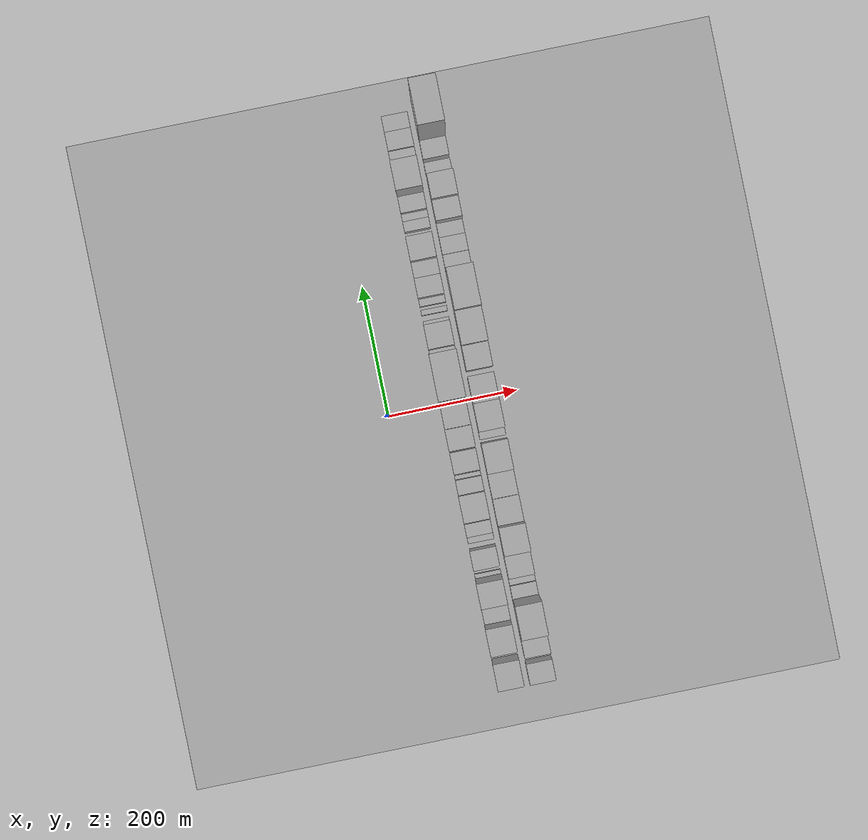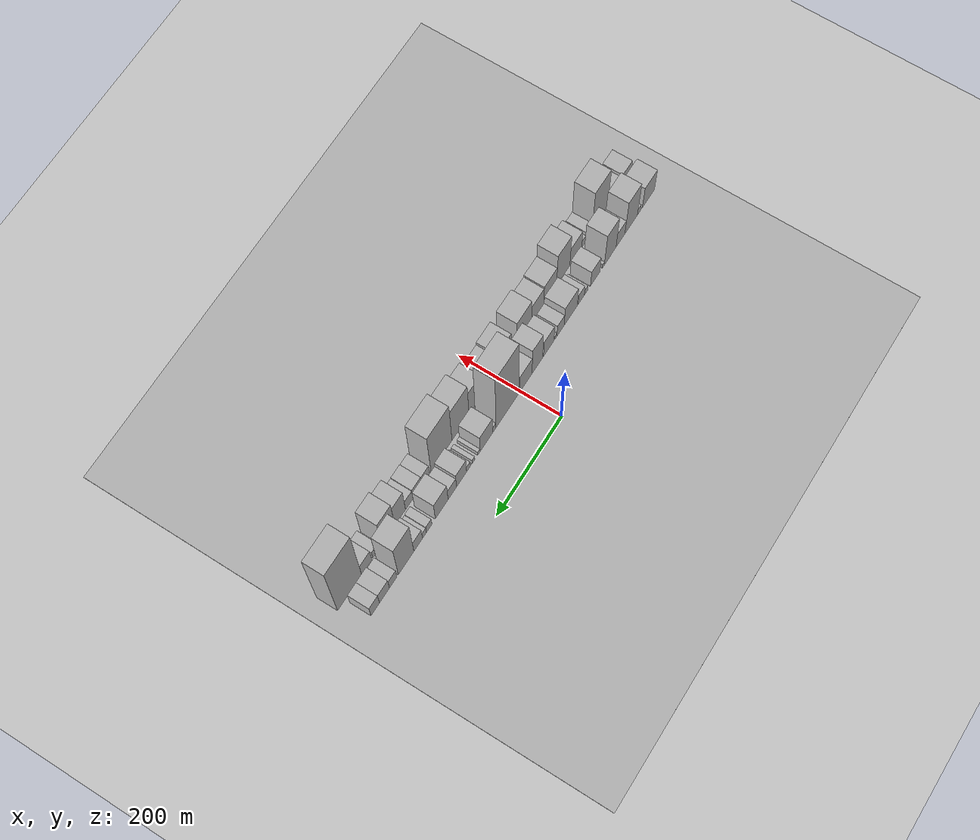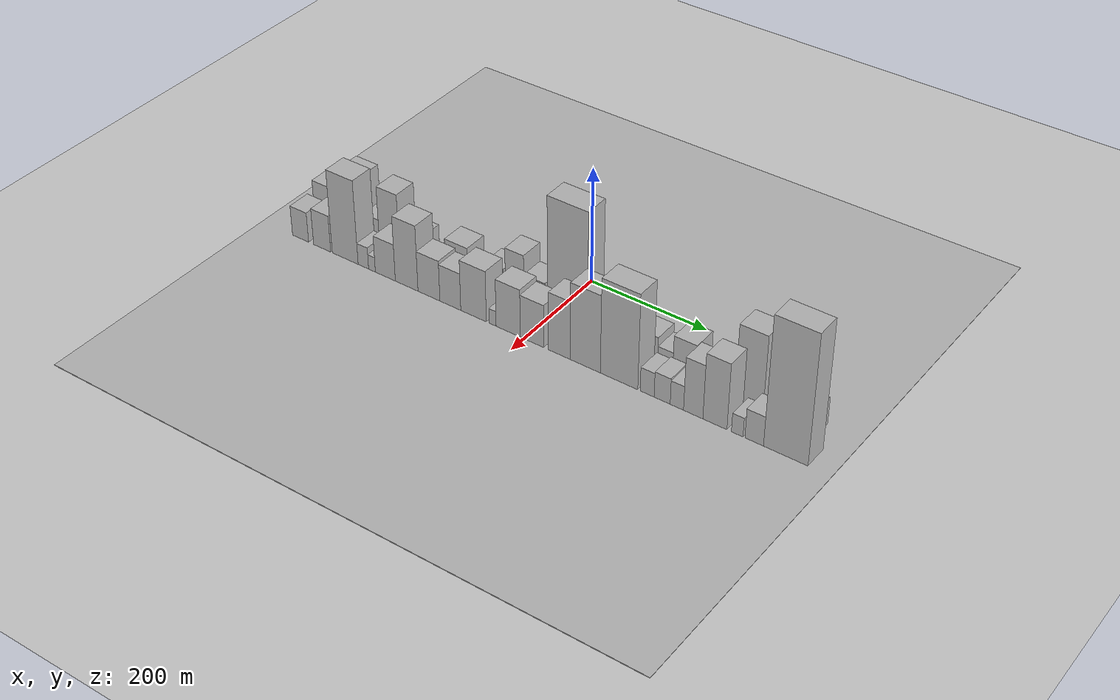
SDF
<sdf version="1.6">
 <world name="default">
  <include><name>ground_plane_1</name><uri>model://HANNAS_ground_plane</uri></include>
  <include>
   <name>ground_plane_2</name>
   <uri>model://HANNAS_ground_plane</uri>
   <pose>100 0 0  0 0 0</pose>
  </include>
  <model name="building_1">
   <static>1</static>
   <pose>100.0000 -414.4459 0 0.000000 0.000000 0.000000</pose>
   <link name="link">
    <pose>0 0 37.50 0 0 0</pose>
    <collision name="collision"><geometry><box><size>40.0000 41.1082 75.0000</size></box></geometry></collision>
    <visual name="visual">
     <cast_shadows>0</cast_shadows>
     <geometry><box><size>40.0000 41.1082 75.0000</size></box></geometry>
     <material>
      <script>
       <uri>model://HANNAS_wall/materials/scripts</uri>
       <uri>model://HANNAS_wall/materials/textures</uri>
       <name>vrc/HANNAS_wall</name>
      </script>
     </material>
    </visual>
   </link>
  </model>
  <model name="building_2">
   <static>1</static>
   <pose>100.0000 -382.5350 0 0.000000 0.000000 0.000000</pose>
   <link name="link">
    <pose>0 0 12.00 0 0 0</pose>
    <collision name="collision"><geometry><box><size>40.0000 10.7137 24.0000</size></box></geometry></collision>
    <visual name="visual">
     <cast_shadows>0</cast_shadows>
     <geometry><box><size>40.0000 10.7137 24.0000</size></box></geometry>
     <material>
      <script>
       <uri>model://HANNAS_wall/materials/scripts</uri>
       <uri>model://HANNAS_wall/materials/textures</uri>
       <name>vrc/HANNAS_wall</name>
      </script>
     </material>
    </visual>
   </link>
  </model>
  <model name="building_3">
   <static>1</static>
   <pose>100.0000 -356.3760 0 0.000000 0.000000 0.000000</pose>
   <link name="link">
    <pose>0 0 60.00 0 0 0</pose>
    <collision name="collision"><geometry><box><size>40.0000 41.6041 120.0000</size></box></geometry></collision>
    <visual name="visual">
     <cast_shadows>0</cast_shadows>
     <geometry><box><size>40.0000 41.6041 120.0000</size></box></geometry>
     <material>
      <script>
       <uri>model://HANNAS_wall/materials/scripts</uri>
       <uri>model://HANNAS_wall/materials/textures</uri>
       <name>vrc/HANNAS_wall</name>
      </script>
     </material>
    </visual>
   </link>
  </model>
  <model name="building_4">
   <static>1</static>
   <pose>100.0000 -321.0208 0 0.000000 0.000000 0.000000</pose>
   <link name="link">
    <pose>0 0 27.00 0 0 0</pose>
    <collision name="collision"><geometry><box><size>40.0000 29.1064 54.0000</size></box></geometry></collision>
    <visual name="visual">
     <cast_shadows>0</cast_shadows>
     <geometry><box><size>40.0000 29.1064 54.0000</size></box></geometry>
     <material>
      <script>
       <uri>model://HANNAS_wall/materials/scripts</uri>
       <uri>model://HANNAS_wall/materials/textures</uri>
       <name>vrc/HANNAS_wall</name>
      </script>
     </material>
    </visual>
   </link>
  </model>
  <model name="building_5">
   <static>1</static>
   <pose>100.0000 -287.2791 0 0.000000 0.000000 0.000000</pose>
   <link name="link">
    <pose>0 0 57.00 0 0 0</pose>
    <collision name="collision"><geometry><box><size>40.0000 38.3769 114.0000</size></box></geometry></collision>
    <visual name="visual">
     <cast_shadows>0</cast_shadows>
     <geometry><box><size>40.0000 38.3769 114.0000</size></box></geometry>
     <material>
      <script>
       <uri>model://HANNAS_wall/materials/scripts</uri>
       <uri>model://HANNAS_wall/materials/textures</uri>
       <name>vrc/HANNAS_wall</name>
      </script>
     </material>
    </visual>
   </link>
  </model>
  <model name="building_6">
   <static>1</static>
   <pose>100.0000 -264.8209 0 0.000000 0.000000 0.000000</pose>
   <link name="link">
    <pose>0 0 7.50 0 0 0</pose>
    <collision name="collision"><geometry><box><size>40.0000 6.5395 15.0000</size></box></geometry></collision>
    <visual name="visual">
     <cast_shadows>0</cast_shadows>
     <geometry><box><size>40.0000 6.5395 15.0000</size></box></geometry>
     <material>
      <script>
       <uri>model://HANNAS_wall/materials/scripts</uri>
       <uri>model://HANNAS_wall/materials/textures</uri>
       <name>vrc/HANNAS_wall</name>
      </script>
     </material>
    </visual>
   </link>
  </model>
  <model name="building_7">
   <static>1</static>
   <pose>100.0000 -238.1437 0 0.000000 0.000000 0.000000</pose>
   <link name="link">
    <pose>0 0 28.50 0 0 0</pose>
    <collision name="collision"><geometry><box><size>40.0000 30.8150 57.0000</size></box></geometry></collision>
    <visual name="visual">
     <cast_shadows>0</cast_shadows>
     <geometry><box><size>40.0000 30.8150 57.0000</size></box></geometry>
     <material>
      <script>
       <uri>model://HANNAS_wall/materials/scripts</uri>
       <uri>model://HANNAS_wall/materials/textures</uri>
       <name>vrc/HANNAS_wall</name>
      </script>
     </material>
    </visual>
   </link>
  </model>
  <model name="building_8">
   <static>1</static>
   <pose>100.0000 -208.5330 0 0.000000 0.000000 0.000000</pose>
   <link name="link">
    <pose>0 0 10.50 0 0 0</pose>
    <collision name="collision"><geometry><box><size>40.0000 10.4063 21.0000</size></box></geometry></collision>
    <visual name="visual">
     <cast_shadows>0</cast_shadows>
     <geometry><box><size>40.0000 10.4063 21.0000</size></box></geometry>
     <material>
      <script>
       <uri>model://HANNAS_wall/materials/scripts</uri>
       <uri>model://HANNAS_wall/materials/textures</uri>
       <name>vrc/HANNAS_wall</name>
      </script>
     </material>
    </visual>
   </link>
  </model>
  <model name="building_9">
   <static>1</static>
   <pose>100.0000 -193.1681 0 0.000000 0.000000 0.000000</pose>
   <link name="link">
    <pose>0 0 19.50 0 0 0</pose>
    <collision name="collision"><geometry><box><size>40.0000 20.3235 39.0000</size></box></geometry></collision>
    <visual name="visual">
     <cast_shadows>0</cast_shadows>
     <geometry><box><size>40.0000 20.3235 39.0000</size></box></geometry>
     <material>
      <script>
       <uri>model://HANNAS_wall/materials/scripts</uri>
       <uri>model://HANNAS_wall/materials/textures</uri>
       <name>vrc/HANNAS_wall</name>
      </script>
     </material>
    </visual>
   </link>
  </model>
  <model name="building_10">
   <static>1</static>
   <pose>100.0000 -159.1667 0 0.000000 0.000000 0.000000</pose>
   <link name="link">
    <pose>0 0 36.00 0 0 0</pose>
    <collision name="collision"><geometry><box><size>40.0000 41.6793 72.0000</size></box></geometry></collision>
    <visual name="visual">
     <cast_shadows>0</cast_shadows>
     <geometry><box><size>40.0000 41.6793 72.0000</size></box></geometry>
     <material>
      <script>
       <uri>model://HANNAS_wall/materials/scripts</uri>
       <uri>model://HANNAS_wall/materials/textures</uri>
       <name>vrc/HANNAS_wall</name>
      </script>
     </material>
    </visual>
   </link>
  </model>
  <model name="building_11">
   <static>1</static>
   <pose>100.0000 -126.7828 0 0.000000 0.000000 0.000000</pose>
   <link name="link">
    <pose>0 0 22.50 0 0 0</pose>
    <collision name="collision"><geometry><box><size>40.0000 23.0886 45.0000</size></box></geometry></collision>
    <visual name="visual">
     <cast_shadows>0</cast_shadows>
     <geometry><box><size>40.0000 23.0886 45.0000</size></box></geometry>
     <material>
      <script>
       <uri>model://HANNAS_wall/materials/scripts</uri>
       <uri>model://HANNAS_wall/materials/textures</uri>
       <name>vrc/HANNAS_wall</name>
      </script>
     </material>
    </visual>
   </link>
  </model>
  <model name="building_12">
   <static>1</static>
   <pose>100.0000 -111.9365 0 0.000000 0.000000 0.000000</pose>
   <link name="link">
    <pose>0 0 7.50 0 0 0</pose>
    <collision name="collision"><geometry><box><size>40.0000 6.6040 15.0000</size></box></geometry></collision>
    <visual name="visual">
     <cast_shadows>0</cast_shadows>
     <geometry><box><size>40.0000 6.6040 15.0000</size></box></geometry>
     <material>
      <script>
       <uri>model://HANNAS_wall/materials/scripts</uri>
       <uri>model://HANNAS_wall/materials/textures</uri>
       <name>vrc/HANNAS_wall</name>
      </script>
     </material>
    </visual>
   </link>
  </model>
  <model name="building_13">
   <static>1</static>
   <pose>100.0000 -89.1315 0 0.000000 0.000000 0.000000</pose>
   <link name="link">
    <pose>0 0 31.50 0 0 0</pose>
    <collision name="collision"><geometry><box><size>40.0000 33.0060 63.0000</size></box></geometry></collision>
    <visual name="visual">
     <cast_shadows>0</cast_shadows>
     <geometry><box><size>40.0000 33.0060 63.0000</size></box></geometry>
     <material>
      <script>
       <uri>model://HANNAS_wall/materials/scripts</uri>
       <uri>model://HANNAS_wall/materials/textures</uri>
       <name>vrc/HANNAS_wall</name>
      </script>
     </material>
    </visual>
   </link>
  </model>
  <model name="building_14">
   <static>1</static>
   <pose>100.0000 -53.1027 0 0.000000 0.000000 0.000000</pose>
   <link name="link">
    <pose>0 0 51.00 0 0 0</pose>
    <collision name="collision"><geometry><box><size>40.0000 33.0517 102.0000</size></box></geometry></collision>
    <visual name="visual">
     <cast_shadows>0</cast_shadows>
     <geometry><box><size>40.0000 33.0517 102.0000</size></box></geometry>
     <material>
      <script>
       <uri>model://HANNAS_wall/materials/scripts</uri>
       <uri>model://HANNAS_wall/materials/textures</uri>
       <name>vrc/HANNAS_wall</name>
      </script>
     </material>
    </visual>
   </link>
  </model>
  <model name="building_15">
   <static>1</static>
   <pose>100.0000 -17.8095 0 0.000000 0.000000 0.000000</pose>
   <link name="link">
    <pose>0 0 34.50 0 0 0</pose>
    <collision name="collision"><geometry><box><size>40.0000 37.5346 69.0000</size></box></geometry></collision>
    <visual name="visual">
     <cast_shadows>0</cast_shadows>
     <geometry><box><size>40.0000 37.5346 69.0000</size></box></geometry>
     <material>
      <script>
       <uri>model://HANNAS_wall/materials/scripts</uri>
       <uri>model://HANNAS_wall/materials/textures</uri>
       <name>vrc/HANNAS_wall</name>
      </script>
     </material>
    </visual>
   </link>
  </model>
  <model name="building_16">
   <static>1</static>
   <pose>100.0000 39.8341 0 0.000000 0.000000 0.000000</pose>
   <link name="link">
    <pose>0 0 111.00 0 0 0</pose>
    <collision name="collision"><geometry><box><size>40.0000 69.7527 222.0000</size></box></geometry></collision>
    <visual name="visual">
     <cast_shadows>0</cast_shadows>
     <geometry><box><size>40.0000 69.7527 222.0000</size></box></geometry>
     <material>
      <script>
       <uri>model://HANNAS_wall/materials/scripts</uri>
       <uri>model://HANNAS_wall/materials/textures</uri>
       <name>vrc/HANNAS_wall</name>
      </script>
     </material>
    </visual>
   </link>
  </model>
  <model name="building_17">
   <static>1</static>
   <pose>100.0000 79.8897 0 0.000000 0.000000 0.000000</pose>
   <link name="link">
    <pose>0 0 12.00 0 0 0</pose>
    <collision name="collision"><geometry><box><size>40.0000 10.3584 24.0000</size></box></geometry></collision>
    <visual name="visual">
     <cast_shadows>0</cast_shadows>
     <geometry><box><size>40.0000 10.3584 24.0000</size></box></geometry>
     <material>
      <script>
       <uri>model://HANNAS_wall/materials/scripts</uri>
       <uri>model://HANNAS_wall/materials/textures</uri>
       <name>vrc/HANNAS_wall</name>
      </script>
     </material>
    </visual>
   </link>
  </model>
  <model name="building_18">
   <static>1</static>
   <pose>100.0000 103.9712 0 0.000000 0.000000 0.000000</pose>
   <link name="link">
    <pose>0 0 34.50 0 0 0</pose>
    <collision name="collision"><geometry><box><size>40.0000 37.8046 69.0000</size></box></geometry></collision>
    <visual name="visual">
     <cast_shadows>0</cast_shadows>
     <geometry><box><size>40.0000 37.8046 69.0000</size></box></geometry>
     <material>
      <script>
       <uri>model://HANNAS_wall/materials/scripts</uri>
       <uri>model://HANNAS_wall/materials/textures</uri>
       <name>vrc/HANNAS_wall</name>
      </script>
     </material>
    </visual>
   </link>
  </model>
  <model name="building_19">
   <static>1</static>
   <pose>100.0000 126.4355 0 0.000000 0.000000 0.000000</pose>
   <link name="link">
    <pose>0 0 7.50 0 0 0</pose>
    <collision name="collision"><geometry><box><size>40.0000 7.1240 15.0000</size></box></geometry></collision>
    <visual name="visual">
     <cast_shadows>0</cast_shadows>
     <geometry><box><size>40.0000 7.1240 15.0000</size></box></geometry>
     <material>
      <script>
       <uri>model://HANNAS_wall/materials/scripts</uri>
       <uri>model://HANNAS_wall/materials/textures</uri>
       <name>vrc/HANNAS_wall</name>
      </script>
     </material>
    </visual>
   </link>
  </model>
  <model name="building_20">
   <static>1</static>
   <pose>100.0000 143.1605 0 0.000000 0.000000 0.000000</pose>
   <link name="link">
    <pose>0 0 9.00 0 0 0</pose>
    <collision name="collision"><geometry><box><size>40.0000 8.3259 18.0000</size></box></geometry></collision>
    <visual name="visual">
     <cast_shadows>0</cast_shadows>
     <geometry><box><size>40.0000 8.3259 18.0000</size></box></geometry>
     <material>
      <script>
       <uri>model://HANNAS_wall/materials/scripts</uri>
       <uri>model://HANNAS_wall/materials/textures</uri>
       <name>vrc/HANNAS_wall</name>
      </script>
     </material>
    </visual>
   </link>
  </model>
  <model name="building_21">
   <static>1</static>
   <pose>100.0000 158.0117 0 0.000000 0.000000 0.000000</pose>
   <link name="link">
    <pose>0 0 12.00 0 0 0</pose>
    <collision name="collision"><geometry><box><size>40.0000 11.3765 24.0000</size></box></geometry></collision>
    <visual name="visual">
     <cast_shadows>0</cast_shadows>
     <geometry><box><size>40.0000 11.3765 24.0000</size></box></geometry>
     <material>
      <script>
       <uri>model://HANNAS_wall/materials/scripts</uri>
       <uri>model://HANNAS_wall/materials/textures</uri>
       <name>vrc/HANNAS_wall</name>
      </script>
     </material>
    </visual>
   </link>
  </model>
  <model name="building_22">
   <static>1</static>
   <pose>100.0000 178.8397 0 0.000000 0.000000 0.000000</pose>
   <link name="link">
    <pose>0 0 30.00 0 0 0</pose>
    <collision name="collision"><geometry><box><size>40.0000 30.2797 60.0000</size></box></geometry></collision>
    <visual name="visual">
     <cast_shadows>0</cast_shadows>
     <geometry><box><size>40.0000 30.2797 60.0000</size></box></geometry>
     <material>
      <script>
       <uri>model://HANNAS_wall/materials/scripts</uri>
       <uri>model://HANNAS_wall/materials/textures</uri>
       <name>vrc/HANNAS_wall</name>
      </script>
     </material>
    </visual>
   </link>
  </model>
  <model name="building_23">
   <static>1</static>
   <pose>100.0000 206.5346 0 0.000000 0.000000 0.000000</pose>
   <link name="link">
    <pose>0 0 22.50 0 0 0</pose>
    <collision name="collision"><geometry><box><size>40.0000 25.1100 45.0000</size></box></geometry></collision>
    <visual name="visual">
     <cast_shadows>0</cast_shadows>
     <geometry><box><size>40.0000 25.1100 45.0000</size></box></geometry>
     <material>
      <script>
       <uri>model://HANNAS_wall/materials/scripts</uri>
       <uri>model://HANNAS_wall/materials/textures</uri>
       <name>vrc/HANNAS_wall</name>
      </script>
     </material>
    </visual>
   </link>
  </model>
  <model name="building_24">
   <static>1</static>
   <pose>100.0000 237.9724 0 0.000000 0.000000 0.000000</pose>
   <link name="link">
    <pose>0 0 37.50 0 0 0</pose>
    <collision name="collision"><geometry><box><size>40.0000 37.7657 75.0000</size></box></geometry></collision>
    <visual name="visual">
     <cast_shadows>0</cast_shadows>
     <geometry><box><size>40.0000 37.7657 75.0000</size></box></geometry>
     <material>
      <script>
       <uri>model://HANNAS_wall/materials/scripts</uri>
       <uri>model://HANNAS_wall/materials/textures</uri>
       <name>vrc/HANNAS_wall</name>
      </script>
     </material>
    </visual>
   </link>
  </model>
  <model name="building_25">
   <static>1</static>
   <pose>100.0000 274.9583 0 0.000000 0.000000 0.000000</pose>
   <link name="link">
    <pose>0 0 15.00 0 0 0</pose>
    <collision name="collision"><geometry><box><size>40.0000 16.2062 30.0000</size></box></geometry></collision>
    <visual name="visual">
     <cast_shadows>0</cast_shadows>
     <geometry><box><size>40.0000 16.2062 30.0000</size></box></geometry>
     <material>
      <script>
       <uri>model://HANNAS_wall/materials/scripts</uri>
       <uri>model://HANNAS_wall/materials/textures</uri>
       <name>vrc/HANNAS_wall</name>
      </script>
     </material>
    </visual>
   </link>
  </model>
  <model name="building_26">
   <static>1</static>
   <pose>100.0000 288.8247 0 0.000000 0.000000 0.000000</pose>
   <link name="link">
    <pose>0 0 13.50 0 0 0</pose>
    <collision name="collision"><geometry><box><size>40.0000 11.5265 27.0000</size></box></geometry></collision>
    <visual name="visual">
     <cast_shadows>0</cast_shadows>
     <geometry><box><size>40.0000 11.5265 27.0000</size></box></geometry>
     <material>
      <script>
       <uri>model://HANNAS_wall/materials/scripts</uri>
       <uri>model://HANNAS_wall/materials/textures</uri>
       <name>vrc/HANNAS_wall</name>
      </script>
     </material>
    </visual>
   </link>
  </model>
  <model name="building_27">
   <static>1</static>
   <pose>100.0000 307.1914 0 0.000000 0.000000 0.000000</pose>
   <link name="link">
    <pose>0 0 24.00 0 0 0</pose>
    <collision name="collision"><geometry><box><size>40.0000 25.2070 48.0000</size></box></geometry></collision>
    <visual name="visual">
     <cast_shadows>0</cast_shadows>
     <geometry><box><size>40.0000 25.2070 48.0000</size></box></geometry>
     <material>
      <script>
       <uri>model://HANNAS_wall/materials/scripts</uri>
       <uri>model://HANNAS_wall/materials/textures</uri>
       <name>vrc/HANNAS_wall</name>
      </script>
     </material>
    </visual>
   </link>
  </model>
  <model name="building_28">
   <static>1</static>
   <pose>100.0000 342.2542 0 0.000000 0.000000 0.000000</pose>
   <link name="link">
    <pose>0 0 70.50 0 0 0</pose>
    <collision name="collision"><geometry><box><size>40.0000 44.9187 141.0000</size></box></geometry></collision>
    <visual name="visual">
     <cast_shadows>0</cast_shadows>
     <geometry><box><size>40.0000 44.9187 141.0000</size></box></geometry>
     <material>
      <script>
       <uri>model://HANNAS_wall/materials/scripts</uri>
       <uri>model://HANNAS_wall/materials/textures</uri>
       <name>vrc/HANNAS_wall</name>
      </script>
     </material>
    </visual>
   </link>
  </model>
  <model name="building_29">
   <static>1</static>
   <pose>100.0000 379.3465 0 0.000000 0.000000 0.000000</pose>
   <link name="link">
    <pose>0 0 19.50 0 0 0</pose>
    <collision name="collision"><geometry><box><size>40.0000 21.2660 39.0000</size></box></geometry></collision>
    <visual name="visual">
     <cast_shadows>0</cast_shadows>
     <geometry><box><size>40.0000 21.2660 39.0000</size></box></geometry>
     <material>
      <script>
       <uri>model://HANNAS_wall/materials/scripts</uri>
       <uri>model://HANNAS_wall/materials/textures</uri>
       <name>vrc/HANNAS_wall</name>
      </script>
     </material>
    </visual>
   </link>
  </model>
  <model name="building_30">
   <static>1</static>
   <pose>100.0000 404.2547 0 0.000000 0.000000 0.000000</pose>
   <link name="link">
    <pose>0 0 24.00 0 0 0</pose>
    <collision name="collision"><geometry><box><size>40.0000 28.5505 48.0000</size></box></geometry></collision>
    <visual name="visual">
     <cast_shadows>0</cast_shadows>
     <geometry><box><size>40.0000 28.5505 48.0000</size></box></geometry>
     <material>
      <script>
       <uri>model://HANNAS_wall/materials/scripts</uri>
       <uri>model://HANNAS_wall/materials/textures</uri>
       <name>vrc/HANNAS_wall</name>
      </script>
     </material>
    </visual>
   </link>
  </model>
  <model name="building_31">
   <static>1</static>
   <pose>100.0000 430.6904 0 0.000000 0.000000 0.000000</pose>
   <link name="link">
    <pose>0 0 24.00 0 0 0</pose>
    <collision name="collision"><geometry><box><size>40.0000 24.3209 48.0000</size></box></geometry></collision>
    <visual name="visual">
     <cast_shadows>0</cast_shadows>
     <geometry><box><size>40.0000 24.3209 48.0000</size></box></geometry>
     <material>
      <script>
       <uri>model://HANNAS_wall/materials/scripts</uri>
       <uri>model://HANNAS_wall/materials/textures</uri>
       <name>vrc/HANNAS_wall</name>
      </script>
     </material>
    </visual>
   </link>
  </model>
  <model name="building_32">
   <static>1</static>
   <pose>149.0000 -421.8443 0 0.000000 0.000000 0.000000</pose>
   <link name="link">
    <pose>0 0 27.00 0 0 0</pose>
    <collision name="collision"><geometry><box><size>40.0000 32.3115 54.0000</size></box></geometry></collision>
    <visual name="visual">
     <cast_shadows>0</cast_shadows>
     <geometry><box><size>40.0000 32.3115 54.0000</size></box></geometry>
     <material>
      <script>
       <uri>model://HANNAS_wall/materials/scripts</uri>
       <uri>model://HANNAS_wall/materials/textures</uri>
       <name>vrc/HANNAS_wall</name>
      </script>
     </material>
    </visual>
   </link>
  </model>
  <model name="building_33">
   <static>1</static>
   <pose>149.0000 -378.6804 0 0.000000 0.000000 0.000000</pose>
   <link name="link">
    <pose>0 0 33.00 0 0 0</pose>
    <collision name="collision"><geometry><box><size>40.0000 34.0163 66.0000</size></box></geometry></collision>
    <visual name="visual">
     <cast_shadows>0</cast_shadows>
     <geometry><box><size>40.0000 34.0163 66.0000</size></box></geometry>
     <material>
      <script>
       <uri>model://HANNAS_wall/materials/scripts</uri>
       <uri>model://HANNAS_wall/materials/textures</uri>
       <name>vrc/HANNAS_wall</name>
      </script>
     </material>
    </visual>
   </link>
  </model>
  <model name="building_34">
   <static>1</static>
   <pose>149.0000 -333.3287 0 0.000000 0.000000 0.000000</pose>
   <link name="link">
    <pose>0 0 75.00 0 0 0</pose>
    <collision name="collision"><geometry><box><size>40.0000 50.6869 150.0000</size></box></geometry></collision>
    <visual name="visual">
     <cast_shadows>0</cast_shadows>
     <geometry><box><size>40.0000 50.6869 150.0000</size></box></geometry>
     <material>
      <script>
       <uri>model://HANNAS_wall/materials/scripts</uri>
       <uri>model://HANNAS_wall/materials/textures</uri>
       <name>vrc/HANNAS_wall</name>
      </script>
     </material>
    </visual>
   </link>
  </model>
  <model name="building_35">
   <static>1</static>
   <pose>149.0000 -297.8260 0 0.000000 0.000000 0.000000</pose>
   <link name="link">
    <pose>0 0 19.50 0 0 0</pose>
    <collision name="collision"><geometry><box><size>40.0000 20.3185 39.0000</size></box></geometry></collision>
    <visual name="visual">
     <cast_shadows>0</cast_shadows>
     <geometry><box><size>40.0000 20.3185 39.0000</size></box></geometry>
     <material>
      <script>
       <uri>model://HANNAS_wall/materials/scripts</uri>
       <uri>model://HANNAS_wall/materials/textures</uri>
       <name>vrc/HANNAS_wall</name>
      </script>
     </material>
    </visual>
   </link>
  </model>
  <model name="building_36">
   <static>1</static>
   <pose>149.0000 -281.1790 0 0.000000 0.000000 0.000000</pose>
   <link name="link">
    <pose>0 0 13.50 0 0 0</pose>
    <collision name="collision"><geometry><box><size>40.0000 12.9755 27.0000</size></box></geometry></collision>
    <visual name="visual">
     <cast_shadows>0</cast_shadows>
     <geometry><box><size>40.0000 12.9755 27.0000</size></box></geometry>
     <material>
      <script>
       <uri>model://HANNAS_wall/materials/scripts</uri>
       <uri>model://HANNAS_wall/materials/textures</uri>
       <name>vrc/HANNAS_wall</name>
      </script>
     </material>
    </visual>
   </link>
  </model>
  <model name="building_37">
   <static>1</static>
   <pose>149.0000 -255.5761 0 0.000000 0.000000 0.000000</pose>
   <link name="link">
    <pose>0 0 33.00 0 0 0</pose>
    <collision name="collision"><geometry><box><size>40.0000 38.2301 66.0000</size></box></geometry></collision>
    <visual name="visual">
     <cast_shadows>0</cast_shadows>
     <geometry><box><size>40.0000 38.2301 66.0000</size></box></geometry>
     <material>
      <script>
       <uri>model://HANNAS_wall/materials/scripts</uri>
       <uri>model://HANNAS_wall/materials/textures</uri>
       <name>vrc/HANNAS_wall</name>
      </script>
     </material>
    </visual>
   </link>
  </model>
  <model name="building_38">
   <static>1</static>
   <pose>149.0000 -215.0234 0 0.000000 0.000000 0.000000</pose>
   <link name="link">
    <pose>0 0 58.50 0 0 0</pose>
    <collision name="collision"><geometry><box><size>40.0000 42.8754 117.0000</size></box></geometry></collision>
    <visual name="visual">
     <cast_shadows>0</cast_shadows>
     <geometry><box><size>40.0000 42.8754 117.0000</size></box></geometry>
     <material>
      <script>
       <uri>model://HANNAS_wall/materials/scripts</uri>
       <uri>model://HANNAS_wall/materials/textures</uri>
       <name>vrc/HANNAS_wall</name>
      </script>
     </material>
    </visual>
   </link>
  </model>
  <model name="building_39">
   <static>1</static>
   <pose>149.0000 -173.1697 0 0.000000 0.000000 0.000000</pose>
   <link name="link">
    <pose>0 0 36.00 0 0 0</pose>
    <collision name="collision"><geometry><box><size>40.0000 40.8320 72.0000</size></box></geometry></collision>
    <visual name="visual">
     <cast_shadows>0</cast_shadows>
     <geometry><box><size>40.0000 40.8320 72.0000</size></box></geometry>
     <material>
      <script>
       <uri>model://HANNAS_wall/materials/scripts</uri>
       <uri>model://HANNAS_wall/materials/textures</uri>
       <name>vrc/HANNAS_wall</name>
      </script>
     </material>
    </visual>
   </link>
  </model>
  <model name="building_40">
   <static>1</static>
   <pose>149.0000 -133.4949 0 0.000000 0.000000 0.000000</pose>
   <link name="link">
    <pose>0 0 33.00 0 0 0</pose>
    <collision name="collision"><geometry><box><size>40.0000 38.5177 66.0000</size></box></geometry></collision>
    <visual name="visual">
     <cast_shadows>0</cast_shadows>
     <geometry><box><size>40.0000 38.5177 66.0000</size></box></geometry>
     <material>
      <script>
       <uri>model://HANNAS_wall/materials/scripts</uri>
       <uri>model://HANNAS_wall/materials/textures</uri>
       <name>vrc/HANNAS_wall</name>
      </script>
     </material>
    </visual>
   </link>
  </model>
  <model name="building_41">
   <static>1</static>
   <pose>149.0000 -91.0365 0 0.000000 0.000000 0.000000</pose>
   <link name="link">
    <pose>0 0 45.00 0 0 0</pose>
    <collision name="collision"><geometry><box><size>40.0000 46.3990 90.0000</size></box></geometry></collision>
    <visual name="visual">
     <cast_shadows>0</cast_shadows>
     <geometry><box><size>40.0000 46.3990 90.0000</size></box></geometry>
     <material>
      <script>
       <uri>model://HANNAS_wall/materials/scripts</uri>
       <uri>model://HANNAS_wall/materials/textures</uri>
       <name>vrc/HANNAS_wall</name>
      </script>
     </material>
    </visual>
   </link>
  </model>
  <model name="building_42">
   <static>1</static>
   <pose>149.0000 -56.5287 0 0.000000 0.000000 0.000000</pose>
   <link name="link">
    <pose>0 0 13.50 0 0 0</pose>
    <collision name="collision"><geometry><box><size>40.0000 12.6167 27.0000</size></box></geometry></collision>
    <visual name="visual">
     <cast_shadows>0</cast_shadows>
     <geometry><box><size>40.0000 12.6167 27.0000</size></box></geometry>
     <material>
      <script>
       <uri>model://HANNAS_wall/materials/scripts</uri>
       <uri>model://HANNAS_wall/materials/textures</uri>
       <name>vrc/HANNAS_wall</name>
      </script>
     </material>
    </visual>
   </link>
  </model>
  <model name="building_43">
   <static>1</static>
   <pose>149.0000 -28.7401 0 0.000000 0.000000 0.000000</pose>
   <link name="link">
    <pose>0 0 42.00 0 0 0</pose>
    <collision name="collision"><geometry><box><size>40.0000 42.9605 84.0000</size></box></geometry></collision>
    <visual name="visual">
     <cast_shadows>0</cast_shadows>
     <geometry><box><size>40.0000 42.9605 84.0000</size></box></geometry>
     <material>
      <script>
       <uri>model://HANNAS_wall/materials/scripts</uri>
       <uri>model://HANNAS_wall/materials/textures</uri>
       <name>vrc/HANNAS_wall</name>
      </script>
     </material>
    </visual>
   </link>
  </model>
  <model name="building_44">
   <static>1</static>
   <pose>149.0000 13.4146 0 0.000000 0.000000 0.000000</pose>
   <link name="link">
    <pose>0 0 37.50 0 0 0</pose>
    <collision name="collision"><geometry><box><size>40.0000 41.3488 75.0000</size></box></geometry></collision>
    <visual name="visual">
     <cast_shadows>0</cast_shadows>
     <geometry><box><size>40.0000 41.3488 75.0000</size></box></geometry>
     <material>
      <script>
       <uri>model://HANNAS_wall/materials/scripts</uri>
       <uri>model://HANNAS_wall/materials/textures</uri>
       <name>vrc/HANNAS_wall</name>
      </script>
     </material>
    </visual>
   </link>
  </model>
  <model name="building_45">
   <static>1</static>
   <pose>149.0000 60.9610 0 0.000000 0.000000 0.000000</pose>
   <link name="link">
    <pose>0 0 51.00 0 0 0</pose>
    <collision name="collision"><geometry><box><size>40.0000 37.7440 102.0000</size></box></geometry></collision>
    <visual name="visual">
     <cast_shadows>0</cast_shadows>
     <geometry><box><size>40.0000 37.7440 102.0000</size></box></geometry>
     <material>
      <script>
       <uri>model://HANNAS_wall/materials/scripts</uri>
       <uri>model://HANNAS_wall/materials/textures</uri>
       <name>vrc/HANNAS_wall</name>
      </script>
     </material>
    </visual>
   </link>
  </model>
  <model name="building_46">
   <static>1</static>
   <pose>149.0000 105.5363 0 0.000000 0.000000 0.000000</pose>
   <link name="link">
    <pose>0 0 67.50 0 0 0</pose>
    <collision name="collision"><geometry><box><size>40.0000 51.4067 135.0000</size></box></geometry></collision>
    <visual name="visual">
     <cast_shadows>0</cast_shadows>
     <geometry><box><size>40.0000 51.4067 135.0000</size></box></geometry>
     <material>
      <script>
       <uri>model://HANNAS_wall/materials/scripts</uri>
       <uri>model://HANNAS_wall/materials/textures</uri>
       <name>vrc/HANNAS_wall</name>
      </script>
     </material>
    </visual>
   </link>
  </model>
  <model name="building_47">
   <static>1</static>
   <pose>149.0000 162.6576 0 0.000000 0.000000 0.000000</pose>
   <link name="link">
    <pose>0 0 82.50 0 0 0</pose>
    <collision name="collision"><geometry><box><size>40.0000 62.8360 165.0000</size></box></geometry></collision>
    <visual name="visual">
     <cast_shadows>0</cast_shadows>
     <geometry><box><size>40.0000 62.8360 165.0000</size></box></geometry>
     <material>
      <script>
       <uri>model://HANNAS_wall/materials/scripts</uri>
       <uri>model://HANNAS_wall/materials/textures</uri>
       <name>vrc/HANNAS_wall</name>
      </script>
     </material>
    </visual>
   </link>
  </model>
  <model name="building_48">
   <static>1</static>
   <pose>149.0000 209.5973 0 0.000000 0.000000 0.000000</pose>
   <link name="link">
    <pose>0 0 21.00 0 0 0</pose>
    <collision name="collision"><geometry><box><size>40.0000 23.0433 42.0000</size></box></geometry></collision>
    <visual name="visual">
     <cast_shadows>0</cast_shadows>
     <geometry><box><size>40.0000 23.0433 42.0000</size></box></geometry>
     <material>
      <script>
       <uri>model://HANNAS_wall/materials/scripts</uri>
       <uri>model://HANNAS_wall/materials/textures</uri>
       <name>vrc/HANNAS_wall</name>
      </script>
     </material>
    </visual>
   </link>
  </model>
  <model name="building_49">
   <static>1</static>
   <pose>149.0000 234.2333 0 0.000000 0.000000 0.000000</pose>
   <link name="link">
    <pose>0 0 22.50 0 0 0</pose>
    <collision name="collision"><geometry><box><size>40.0000 26.2287 45.0000</size></box></geometry></collision>
    <visual name="visual">
     <cast_shadows>0</cast_shadows>
     <geometry><box><size>40.0000 26.2287 45.0000</size></box></geometry>
     <material>
      <script>
       <uri>model://HANNAS_wall/materials/scripts</uri>
       <uri>model://HANNAS_wall/materials/textures</uri>
       <name>vrc/HANNAS_wall</name>
      </script>
     </material>
    </visual>
   </link>
  </model>
  <model name="building_50">
   <static>1</static>
   <pose>149.0000 258.1815 0 0.000000 0.000000 0.000000</pose>
   <link name="link">
    <pose>0 0 21.00 0 0 0</pose>
    <collision name="collision"><geometry><box><size>40.0000 21.6677 42.0000</size></box></geometry></collision>
    <visual name="visual">
     <cast_shadows>0</cast_shadows>
     <geometry><box><size>40.0000 21.6677 42.0000</size></box></geometry>
     <material>
      <script>
       <uri>model://HANNAS_wall/materials/scripts</uri>
       <uri>model://HANNAS_wall/materials/textures</uri>
       <name>vrc/HANNAS_wall</name>
      </script>
     </material>
    </visual>
   </link>
  </model>
  <model name="building_51">
   <static>1</static>
   <pose>149.0000 284.5810 0 0.000000 0.000000 0.000000</pose>
   <link name="link">
    <pose>0 0 46.50 0 0 0</pose>
    <collision name="collision"><geometry><box><size>40.0000 31.1313 93.0000</size></box></geometry></collision>
    <visual name="visual">
     <cast_shadows>0</cast_shadows>
     <geometry><box><size>40.0000 31.1313 93.0000</size></box></geometry>
     <material>
      <script>
       <uri>model://HANNAS_wall/materials/scripts</uri>
       <uri>model://HANNAS_wall/materials/textures</uri>
       <name>vrc/HANNAS_wall</name>
      </script>
     </material>
    </visual>
   </link>
  </model>
  <model name="building_52">
   <static>1</static>
   <pose>149.0000 319.2829 0 0.000000 0.000000 0.000000</pose>
   <link name="link">
    <pose>0 0 57.00 0 0 0</pose>
    <collision name="collision"><geometry><box><size>40.0000 38.2725 114.0000</size></box></geometry></collision>
    <visual name="visual">
     <cast_shadows>0</cast_shadows>
     <geometry><box><size>40.0000 38.2725 114.0000</size></box></geometry>
     <material>
      <script>
       <uri>model://HANNAS_wall/materials/scripts</uri>
       <uri>model://HANNAS_wall/materials/textures</uri>
       <name>vrc/HANNAS_wall</name>
      </script>
     </material>
    </visual>
   </link>
  </model>
  <model name="building_53">
   <static>1</static>
   <pose>149.0000 354.5838 0 0.000000 0.000000 0.000000</pose>
   <link name="link">
    <pose>0 0 16.50 0 0 0</pose>
    <collision name="collision"><geometry><box><size>40.0000 18.3294 33.0000</size></box></geometry></collision>
    <visual name="visual">
     <cast_shadows>0</cast_shadows>
     <geometry><box><size>40.0000 18.3294 33.0000</size></box></geometry>
     <material>
      <script>
       <uri>model://HANNAS_wall/materials/scripts</uri>
       <uri>model://HANNAS_wall/materials/textures</uri>
       <name>vrc/HANNAS_wall</name>
      </script>
     </material>
    </visual>
   </link>
  </model>
  <model name="building_54">
   <static>1</static>
   <pose>149.0000 381.1720 0 0.000000 0.000000 0.000000</pose>
   <link name="link">
    <pose>0 0 25.50 0 0 0</pose>
    <collision name="collision"><geometry><box><size>40.0000 28.8470 51.0000</size></box></geometry></collision>
    <visual name="visual">
     <cast_shadows>0</cast_shadows>
     <geometry><box><size>40.0000 28.8470 51.0000</size></box></geometry>
     <material>
      <script>
       <uri>model://HANNAS_wall/materials/scripts</uri>
       <uri>model://HANNAS_wall/materials/textures</uri>
       <name>vrc/HANNAS_wall</name>
      </script>
     </material>
    </visual>
   </link>
  </model>
  <model name="building_55">
   <static>1</static>
   <pose>149.0000 429.7128 0 0.000000 0.000000 0.000000</pose>
   <link name="link">
    <pose>0 0 111.00 0 0 0</pose>
    <collision name="collision"><geometry><box><size>40.0000 68.2345 222.0000</size></box></geometry></collision>
    <visual name="visual">
     <cast_shadows>0</cast_shadows>
     <geometry><box><size>40.0000 68.2345 222.0000</size></box></geometry>
     <material>
      <script>
       <uri>model://HANNAS_wall/materials/scripts</uri>
       <uri>model://HANNAS_wall/materials/textures</uri>
       <name>vrc/HANNAS_wall</name>
      </script>
     </material>
    </visual>
   </link>
  </model>
 </world>
</sdf>
